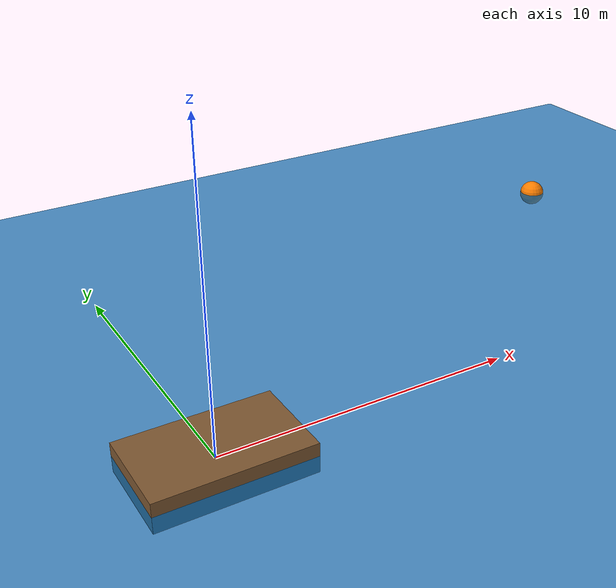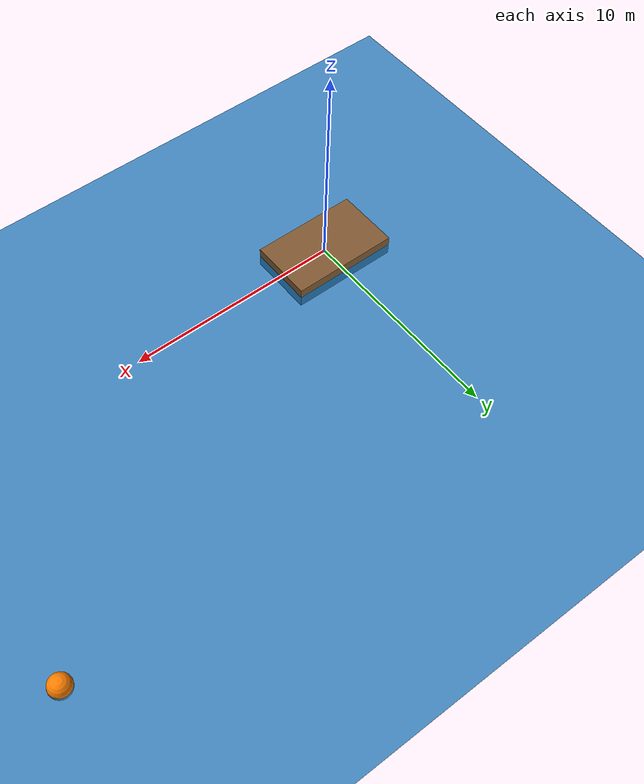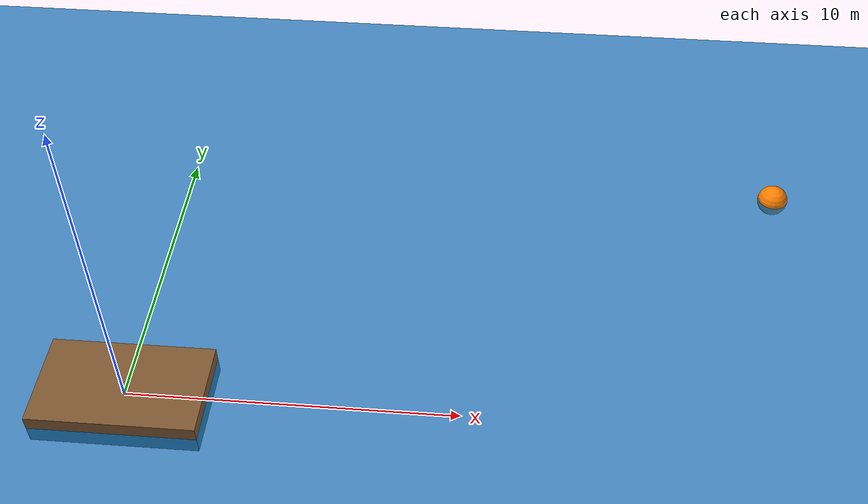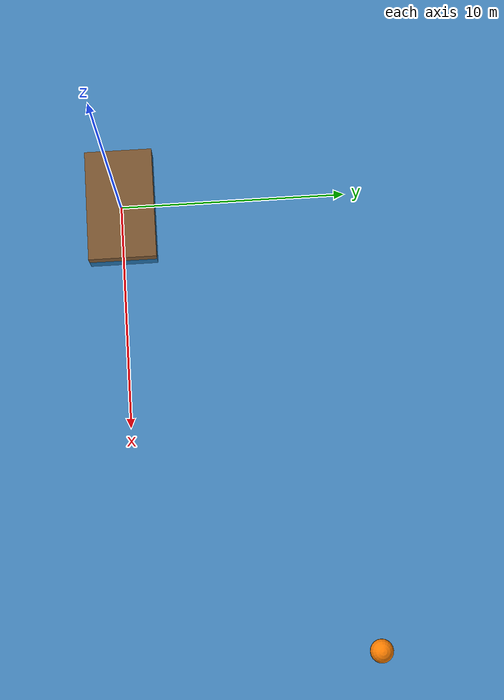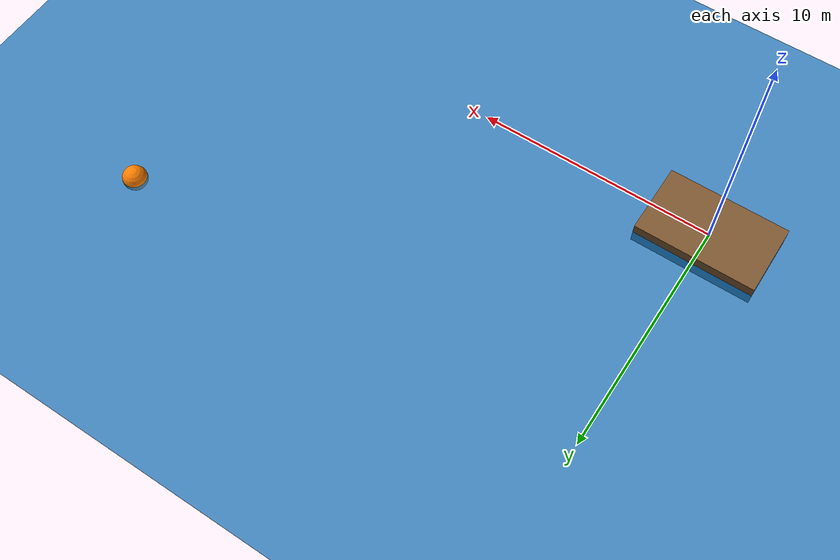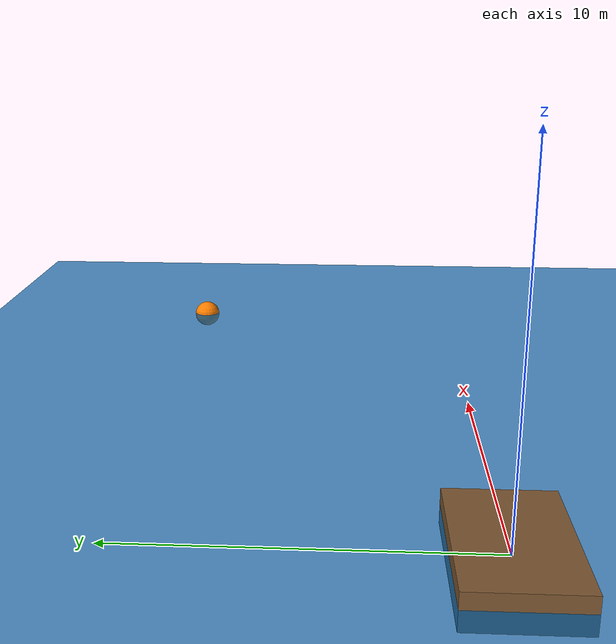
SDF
<?xml version="1.0"?>
<sdf version="1.6">
  <world name="usv_world">
    <!-- Physics for water simulation -->
    <physics name="default_physics" default="true" type="ode">
      <real_time_update_rate>1000</real_time_update_rate>
      <max_step_size>0.001</max_step_size>
      <real_time_factor>1.0</real_time_factor>
      <ode>
        <solver>
          <type>quick</type>
          <iters>50</iters>
          <sor>1.3</sor>
        </solver>
      </ode>
    </physics>

    <scene>
      <ambient>0.4 0.4 0.4 1</ambient>
      <background>0.529 0.808 0.922 1</background>
      <shadows>true</shadows>
      <fog>
        <color>0.529 0.808 0.922 1</color>
        <type>linear</type>
        <start>50</start>
        <end>200</end>
        <density>0.01</density>
      </fog>
    </scene>

    <!-- Water Surface -->
    <model name="water_surface">
      <static>true</static>
      <pose>0 0 0 0 0 0</pose>
      <link name="link">
        <visual name="visual">
          <geometry>
            <box>
              <size>500 500 0.1</size>
            </box>
          </geometry>
          <material>
            <ambient>0.0 0.4 0.7 0.7</ambient>
            <diffuse>0.0 0.4 0.7 0.7</diffuse>
            <specular>0.5 0.5 0.5 1</specular>
            <emissive>0 0 0 1</emissive>
          </material>
        </visual>
      </link>
    </model>

    <!-- Buoys -->
    <model name="buoy_1">
      <static>true</static>
      <pose>20 10 0 0 0 0</pose>
      <link name="link">
        <collision name="collision">
          <geometry>
            <sphere>
              <radius>0.5</radius>
            </sphere>
          </geometry>
        </collision>
        <visual name="visual">
          <geometry>
            <sphere>
              <radius>0.5</radius>
            </sphere>
          </geometry>
          <material>
            <ambient>1 0.5 0 1</ambient>
            <diffuse>1 0.5 0 1</diffuse>
          </material>
        </visual>
      </link>
    </model>

    <!-- Docking Station -->
    <model name="docking_station">
      <static>true</static>
      <pose>0 0 0 0 0 0</pose>
      <link name="link">
        <visual name="visual">
          <geometry>
            <box>
              <size>5 3 1</size>
            </box>
          </geometry>
          <material>
            <ambient>0.5 0.35 0.2 1</ambient>
            <diffuse>0.5 0.35 0.2 1</diffuse>
          </material>
        </visual>
      </link>
    </model>

    <!-- Wave Plugin -->
    <plugin name="wave_plugin" filename="libgazebo_ros_wave.so">
      <wave_topic>/world/usv_world/waves</wave_topic>
      <wave_amplitude>0.5</wave_amplitude>
      <wave_period>5.0</wave_period>
      <wave_direction>1 0 0</wave_direction>
    </plugin>

    <!-- Current Plugin -->
    <plugin name="current_plugin" filename="libgazebo_ros_current.so">
      <current_topic>/world/usv_world/current</current_topic>
      <current_velocity_mean>0.5</current_velocity_mean>
      <current_velocity_variance>0.1</current_velocity_variance>
      <current_direction_mean>0.0</current_direction_mean>
    </plugin>
  </world>
</sdf>
